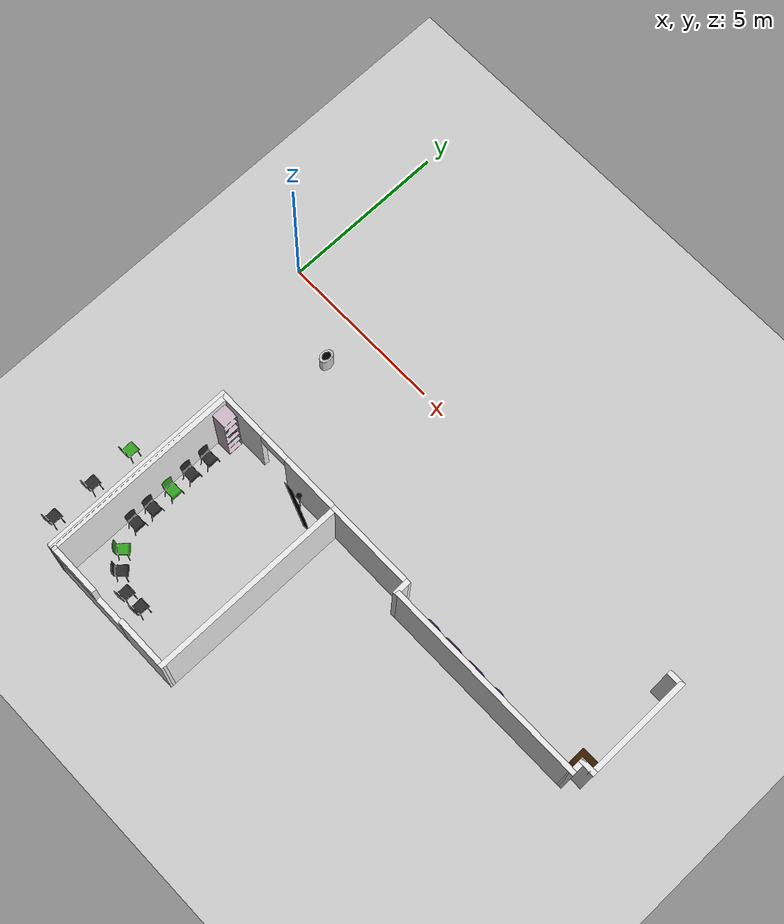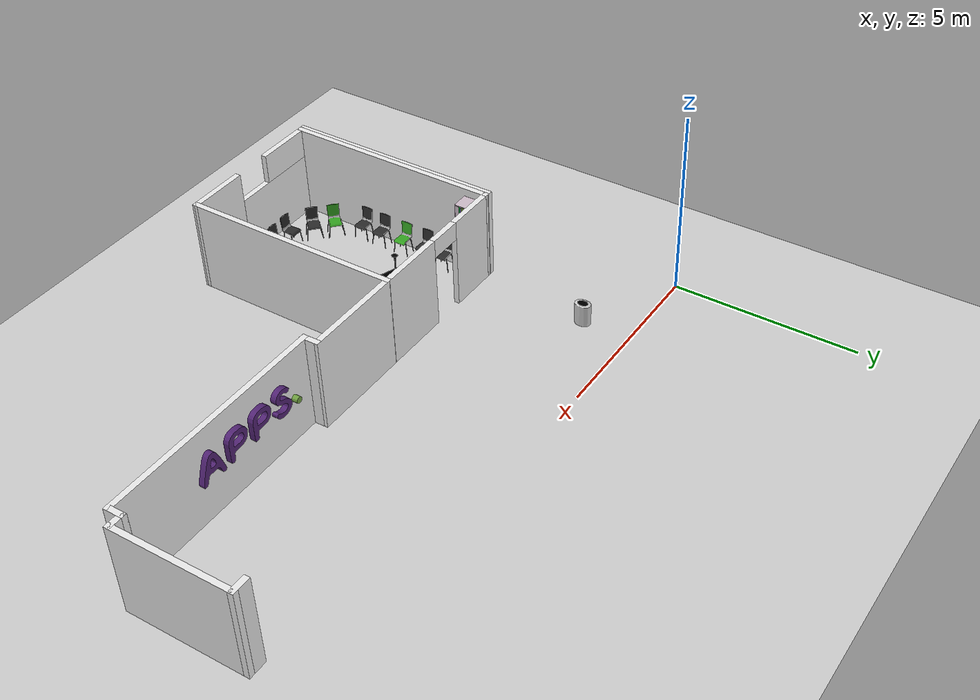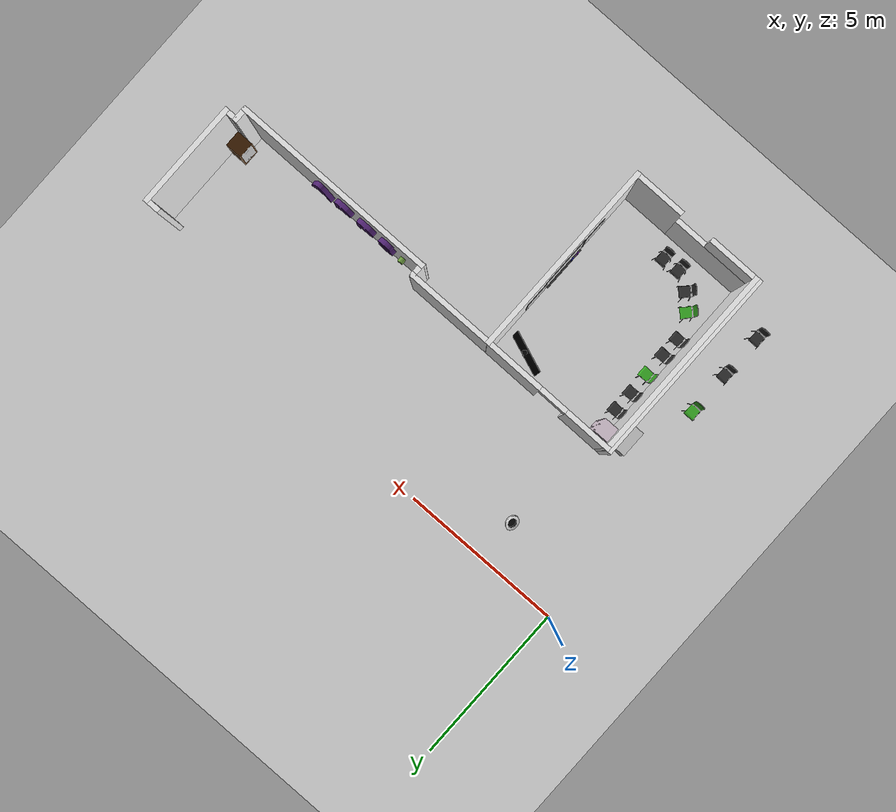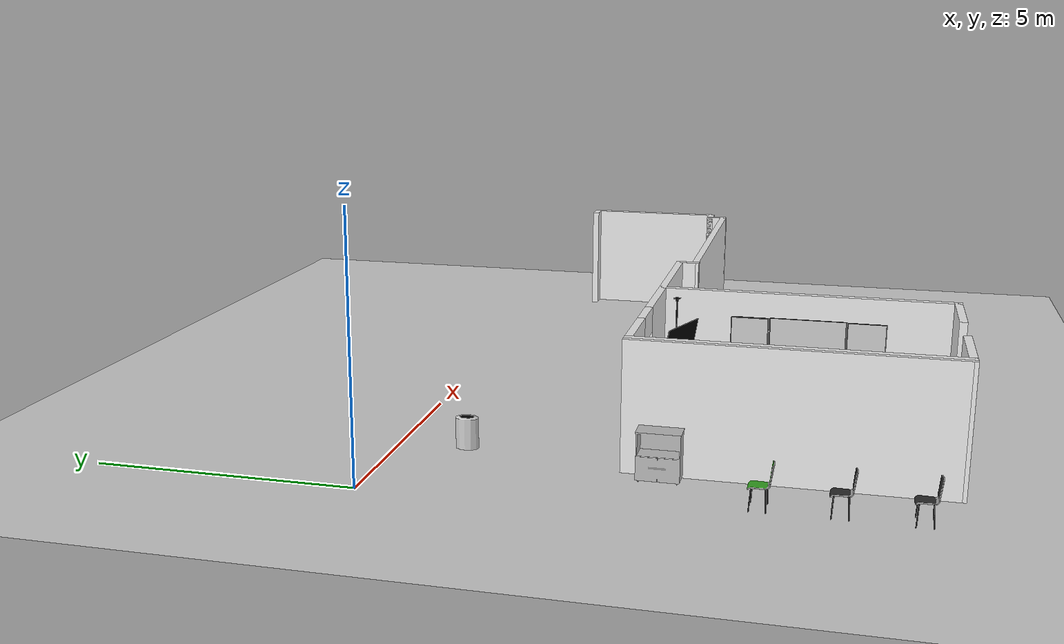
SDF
<sdf version="1.6">
 <world name="default">
  <model name="ground_plane">
   <static>1</static>
   <link name="link">
    <collision name="collision">
     <geometry><plane><normal>0 0 1</normal><size>100 100</size></plane></geometry>
     <surface><friction><ode><mu>100</mu><mu2>50</mu2></ode></friction></surface>
    </collision>
    <visual name="visual">
     <cast_shadows>0</cast_shadows>
     <geometry><plane><normal>0 0 1</normal><size>100 100</size></plane></geometry>
     <material>
      <script><uri>file://media/materials/scripts/gazebo.material</uri><name>Gazebo/Grey</name></script>
     </material>
    </visual>
   </link>
  </model>
  <model name="ucu_basic_frame.world">
   <link name="Wall_171">
    <pose>5.44548 -11.0107 0 0 -0 1.5685</pose>
    <visual name="Wall_171_Visual">
     <pose>0 0 1.25 0 -0 0</pose>
     <geometry><box><size>5.97284 0.15 2.5</size></box></geometry>
     <material>
      <script><uri>file://media/materials/scripts/gazebo.material</uri><name>Gazebo/White</name></script>
      <ambient>1 1 1 1</ambient>
      <diffuse>1 1 1 1</diffuse>
      <specular>0 0 0 1</specular>
      <emissive>0 0 0 1</emissive>
     </material>
     <meta><layer>0</layer></meta>
    </visual>
    <collision name="Wall_171_Collision">
     <pose>0 0 1.25 0 -0 0</pose>
     <geometry><box><size>5.97284 0.15 2.5</size></box></geometry>
     <surface>
      <friction>
       <ode><mu>1</mu><mu2>1</mu2><fdir1>0 0 0</fdir1><slip1>0</slip1><slip2>0</slip2></ode>
       <torsional>
        <coefficient>1</coefficient>
        <patch_radius>0</patch_radius>
        <surface_radius>0</surface_radius>
        <use_patch_radius>1</use_patch_radius>
        <ode><slip>0</slip></ode>
       </torsional>
      </friction>
      <bounce><restitution_coefficient>0</restitution_coefficient><threshold>1e+06</threshold></bounce>
      <contact>
       <collide_without_contact>0</collide_without_contact>
       <collide_without_contact_bitmask>1</collide_without_contact_bitmask>
       <collide_bitmask>1</collide_bitmask>
       <ode>
        <soft_cfm>0</soft_cfm>
        <soft_erp>0.2</soft_erp>
        <kp>1e+13</kp>
        <kd>1</kd>
        <max_vel>0.01</max_vel>
        <min_depth>0</min_depth>
       </ode>
       <bullet>
        <split_impulse>1</split_impulse>
        <split_impulse_penetration_threshold>-0.01</split_impulse_penetration_threshold>
        <soft_cfm>0</soft_cfm>
        <soft_erp>0.2</soft_erp>
        <kp>1e+13</kp>
        <kd>1</kd>
       </bullet>
      </contact>
     </surface>
    </collision>
   </link>
   <link name="Wall_172">
    <pose>6.76546 -8.09988 0 0 0 -0.000444</pose>
    <visual name="Wall_172_Visual">
     <pose>0 0 1.25 0 -0 0</pose>
     <geometry><box><size>2.77695 0.15 2.5</size></box></geometry>
     <material>
      <script><uri>file://media/materials/scripts/gazebo.material</uri><name>Gazebo/White</name></script>
      <ambient>1 1 1 1</ambient>
      <diffuse>1 1 1 1</diffuse>
      <specular>0 0 0 1</specular>
      <emissive>0 0 0 1</emissive>
     </material>
     <meta><layer>0</layer></meta>
    </visual>
    <collision name="Wall_172_Collision">
     <pose>0 0 1.25 0 -0 0</pose>
     <geometry><box><size>2.77695 0.15 2.5</size></box></geometry>
     <surface>
      <friction>
       <ode><mu>1</mu><mu2>1</mu2><fdir1>0 0 0</fdir1><slip1>0</slip1><slip2>0</slip2></ode>
       <torsional>
        <coefficient>1</coefficient>
        <patch_radius>0</patch_radius>
        <surface_radius>0</surface_radius>
        <use_patch_radius>1</use_patch_radius>
        <ode><slip>0</slip></ode>
       </torsional>
      </friction>
      <bounce><restitution_coefficient>0</restitution_coefficient><threshold>1e+06</threshold></bounce>
      <contact>
       <collide_without_contact>0</collide_without_contact>
       <collide_without_contact_bitmask>1</collide_without_contact_bitmask>
       <collide_bitmask>1</collide_bitmask>
       <ode>
        <soft_cfm>0</soft_cfm>
        <soft_erp>0.2</soft_erp>
        <kp>1e+13</kp>
        <kd>1</kd>
        <max_vel>0.01</max_vel>
        <min_depth>0</min_depth>
       </ode>
       <bullet>
        <split_impulse>1</split_impulse>
        <split_impulse_penetration_threshold>-0.01</split_impulse_penetration_threshold>
        <soft_cfm>0</soft_cfm>
        <soft_erp>0.2</soft_erp>
        <kp>1e+13</kp>
        <kd>1</kd>
       </bullet>
      </contact>
     </surface>
    </collision>
   </link>
   <link name="Wall_175">
    <pose>8.08184 -8.28385 0 0 0 -1.55318</pose>
    <visual name="Wall_175_Visual">
     <pose>0 0 1.25 0 -0 0</pose>
     <geometry><box><size>0.5 0.15 2.5</size></box></geometry>
     <material>
      <script><uri>file://media/materials/scripts/gazebo.material</uri><name>Gazebo/White</name></script>
      <ambient>1 1 1 1</ambient>
      <diffuse>1 1 1 1</diffuse>
      <specular>0 0 0 1</specular>
      <emissive>0 0 0 1</emissive>
     </material>
     <meta><layer>0</layer></meta>
    </visual>
    <collision name="Wall_175_Collision">
     <pose>0 0 1.25 0 -0 0</pose>
     <geometry><box><size>0.5 0.15 2.5</size></box></geometry>
     <surface>
      <friction>
       <ode><mu>1</mu><mu2>1</mu2><fdir1>0 0 0</fdir1><slip1>0</slip1><slip2>0</slip2></ode>
       <torsional>
        <coefficient>1</coefficient>
        <patch_radius>0</patch_radius>
        <surface_radius>0</surface_radius>
        <use_patch_radius>1</use_patch_radius>
        <ode><slip>0</slip></ode>
       </torsional>
      </friction>
      <bounce><restitution_coefficient>0</restitution_coefficient><threshold>1e+06</threshold></bounce>
      <contact>
       <collide_without_contact>0</collide_without_contact>
       <collide_without_contact_bitmask>1</collide_without_contact_bitmask>
       <collide_bitmask>1</collide_bitmask>
       <ode>
        <soft_cfm>0</soft_cfm>
        <soft_erp>0.2</soft_erp>
        <kp>1e+13</kp>
        <kd>1</kd>
        <max_vel>0.01</max_vel>
        <min_depth>0</min_depth>
       </ode>
       <bullet>
        <split_impulse>1</split_impulse>
        <split_impulse_penetration_threshold>-0.01</split_impulse_penetration_threshold>
        <soft_cfm>0</soft_cfm>
        <soft_erp>0.2</soft_erp>
        <kp>1e+13</kp>
        <kd>1</kd>
       </bullet>
      </contact>
     </surface>
    </collision>
   </link>
   <link name="Wall_181">
    <pose>3.39042 -8.08948 0 0 -0 3.13683</pose>
    <visual name="Wall_181_Visual_0">
     <pose>-1.19379 0 1.25 0 -0 0</pose>
     <geometry><box><size>1.8861 0.15 2.5</size></box></geometry>
     <material>
      <script><uri>file://media/materials/scripts/gazebo.material</uri><name>Gazebo/White</name></script>
      <ambient>1 1 1 1</ambient>
      <diffuse>1 1 1 1</diffuse>
      <specular>0 0 0 1</specular>
      <emissive>0 0 0 1</emissive>
     </material>
     <meta><layer>0</layer></meta>
    </visual>
    <visual name="Wall_181_Visual_1">
     <pose>1.39305 0 1.25 0 -0 0</pose>
     <geometry><box><size>1.48758 0.15 2.5</size></box></geometry>
     <material>
      <script><uri>file://media/materials/scripts/gazebo.material</uri><name>Gazebo/White</name></script>
      <ambient>1 1 1 1</ambient>
      <diffuse>1 1 1 1</diffuse>
      <specular>0 0 0 1</specular>
      <emissive>0 0 0 1</emissive>
     </material>
     <meta><layer>0</layer></meta>
    </visual>
    <visual name="Wall_181_Visual_2">
     <pose>0.19926 0 2.25 0 -0 0</pose>
     <geometry><box><size>0.9 0.15 0.5</size></box></geometry>
     <material>
      <script><uri>file://media/materials/scripts/gazebo.material</uri><name>Gazebo/White</name></script>
      <ambient>1 1 1 1</ambient>
      <diffuse>1 1 1 1</diffuse>
      <specular>0 0 0 1</specular>
      <emissive>0 0 0 1</emissive>
     </material>
     <meta><layer>0</layer></meta>
    </visual>
    <collision name="Wall_181_Collision_0">
     <pose>-1.19379 0 1.25 0 -0 0</pose>
     <geometry><box><size>1.8861 0.15 2.5</size></box></geometry>
     <surface>
      <friction>
       <ode><mu>1</mu><mu2>1</mu2><fdir1>0 0 0</fdir1><slip1>0</slip1><slip2>0</slip2></ode>
       <torsional>
        <coefficient>1</coefficient>
        <patch_radius>0</patch_radius>
        <surface_radius>0</surface_radius>
        <use_patch_radius>1</use_patch_radius>
        <ode><slip>0</slip></ode>
       </torsional>
      </friction>
      <bounce><restitution_coefficient>0</restitution_coefficient><threshold>1e+06</threshold></bounce>
      <contact>
       <collide_without_contact>0</collide_without_contact>
       <collide_without_contact_bitmask>1</collide_without_contact_bitmask>
       <collide_bitmask>1</collide_bitmask>
       <ode>
        <soft_cfm>0</soft_cfm>
        <soft_erp>0.2</soft_erp>
        <kp>1e+13</kp>
        <kd>1</kd>
        <max_vel>0.01</max_vel>
        <min_depth>0</min_depth>
       </ode>
       <bullet>
        <split_impulse>1</split_impulse>
        <split_impulse_penetration_threshold>-0.01</split_impulse_penetration_threshold>
        <soft_cfm>0</soft_cfm>
        <soft_erp>0.2</soft_erp>
        <kp>1e+13</kp>
        <kd>1</kd>
       </bullet>
      </contact>
     </surface>
    </collision>
    <collision name="Wall_181_Collision_1">
     <pose>1.39305 0 1.25 0 -0 0</pose>
     <geometry><box><size>1.48758 0.15 2.5</size></box></geometry>
     <surface>
      <friction>
       <ode><mu>1</mu><mu2>1</mu2><fdir1>0 0 0</fdir1><slip1>0</slip1><slip2>0</slip2></ode>
       <torsional>
        <coefficient>1</coefficient>
        <patch_radius>0</patch_radius>
        <surface_radius>0</surface_radius>
        <use_patch_radius>1</use_patch_radius>
        <ode><slip>0</slip></ode>
       </torsional>
      </friction>
      <bounce><restitution_coefficient>0</restitution_coefficient><threshold>1e+06</threshold></bounce>
      <contact>
       <collide_without_contact>0</collide_without_contact>
       <collide_without_contact_bitmask>1</collide_without_contact_bitmask>
       <collide_bitmask>1</collide_bitmask>
       <ode>
        <soft_cfm>0</soft_cfm>
        <soft_erp>0.2</soft_erp>
        <kp>1e+13</kp>
        <kd>1</kd>
        <max_vel>0.01</max_vel>
        <min_depth>0</min_depth>
       </ode>
       <bullet>
        <split_impulse>1</split_impulse>
        <split_impulse_penetration_threshold>-0.01</split_impulse_penetration_threshold>
        <soft_cfm>0</soft_cfm>
        <soft_erp>0.2</soft_erp>
        <kp>1e+13</kp>
        <kd>1</kd>
       </bullet>
      </contact>
     </surface>
    </collision>
    <collision name="Wall_181_Collision_2">
     <pose>0.19926 0 2.25 0 -0 0</pose>
     <geometry><box><size>0.9 0.15 0.5</size></box></geometry>
     <surface>
      <friction>
       <ode><mu>1</mu><mu2>1</mu2><fdir1>0 0 0</fdir1><slip1>0</slip1><slip2>0</slip2></ode>
       <torsional>
        <coefficient>1</coefficient>
        <patch_radius>0</patch_radius>
        <surface_radius>0</surface_radius>
        <use_patch_radius>1</use_patch_radius>
        <ode><slip>0</slip></ode>
       </torsional>
      </friction>
      <bounce><restitution_coefficient>0</restitution_coefficient><threshold>1e+06</threshold></bounce>
      <contact>
       <collide_without_contact>0</collide_without_contact>
       <collide_without_contact_bitmask>1</collide_without_contact_bitmask>
       <collide_bitmask>1</collide_bitmask>
       <ode>
        <soft_cfm>0</soft_cfm>
        <soft_erp>0.2</soft_erp>
        <kp>1e+13</kp>
        <kd>1</kd>
        <max_vel>0.01</max_vel>
        <min_depth>0</min_depth>
       </ode>
       <bullet>
        <split_impulse>1</split_impulse>
        <split_impulse_penetration_threshold>-0.01</split_impulse_penetration_threshold>
        <soft_cfm>0</soft_cfm>
        <soft_erp>0.2</soft_erp>
        <kp>1e+13</kp>
        <kd>1</kd>
       </bullet>
      </contact>
     </surface>
    </collision>
   </link>
   <link name="Wall_184">
    <pose>1.33252 -10.9956 0 0 0 -1.56948</pose>
    <visual name="Wall_184_Visual">
     <pose>0 0 1.25 0 -0 0</pose>
     <geometry><box><size>5.98199 0.15 2.5</size></box></geometry>
     <material>
      <script><uri>file://media/materials/scripts/gazebo.material</uri><name>Gazebo/White</name></script>
      <ambient>1 1 1 1</ambient>
      <diffuse>1 1 1 1</diffuse>
      <specular>0 0 0 1</specular>
      <emissive>0 0 0 1</emissive>
     </material>
     <meta><layer>0</layer></meta>
    </visual>
    <collision name="Wall_184_Collision">
     <pose>0 0 1.25 0 -0 0</pose>
     <geometry><box><size>5.98199 0.15 2.5</size></box></geometry>
     <surface>
      <friction>
       <ode><mu>1</mu><mu2>1</mu2><fdir1>0 0 0</fdir1><slip1>0</slip1><slip2>0</slip2></ode>
       <torsional>
        <coefficient>1</coefficient>
        <patch_radius>0</patch_radius>
        <surface_radius>0</surface_radius>
        <use_patch_radius>1</use_patch_radius>
        <ode><slip>0</slip></ode>
       </torsional>
      </friction>
      <bounce><restitution_coefficient>0</restitution_coefficient><threshold>1e+06</threshold></bounce>
      <contact>
       <collide_without_contact>0</collide_without_contact>
       <collide_without_contact_bitmask>1</collide_without_contact_bitmask>
       <collide_bitmask>1</collide_bitmask>
       <ode>
        <soft_cfm>0</soft_cfm>
        <soft_erp>0.2</soft_erp>
        <kp>1e+13</kp>
        <kd>1</kd>
        <max_vel>0.01</max_vel>
        <min_depth>0</min_depth>
       </ode>
       <bullet>
        <split_impulse>1</split_impulse>
        <split_impulse_penetration_threshold>-0.01</split_impulse_penetration_threshold>
        <soft_cfm>0</soft_cfm>
        <soft_erp>0.2</soft_erp>
        <kp>1e+13</kp>
        <kd>1</kd>
       </bullet>
      </contact>
     </surface>
    </collision>
   </link>
   <link name="Wall_185">
    <pose>1.28661 -13.9114 0 0 -0 3.13667</pose>
    <visual name="Wall_185_Visual">
     <pose>0 0 1.25 0 -0 0</pose>
     <geometry><box><size>0.249504 0.15 2.5</size></box></geometry>
     <material>
      <script><uri>file://media/materials/scripts/gazebo.material</uri><name>Gazebo/White</name></script>
      <ambient>1 1 1 1</ambient>
      <diffuse>1 1 1 1</diffuse>
      <specular>0 0 0 1</specular>
      <emissive>0 0 0 1</emissive>
     </material>
     <meta><layer>0</layer></meta>
    </visual>
    <collision name="Wall_185_Collision">
     <pose>0 0 1.25 0 -0 0</pose>
     <geometry><box><size>0.249504 0.15 2.5</size></box></geometry>
     <surface>
      <friction>
       <ode><mu>1</mu><mu2>1</mu2><fdir1>0 0 0</fdir1><slip1>0</slip1><slip2>0</slip2></ode>
       <torsional>
        <coefficient>1</coefficient>
        <patch_radius>0</patch_radius>
        <surface_radius>0</surface_radius>
        <use_patch_radius>1</use_patch_radius>
        <ode><slip>0</slip></ode>
       </torsional>
      </friction>
      <bounce><restitution_coefficient>0</restitution_coefficient><threshold>1e+06</threshold></bounce>
      <contact>
       <collide_without_contact>0</collide_without_contact>
       <collide_without_contact_bitmask>1</collide_without_contact_bitmask>
       <collide_bitmask>1</collide_bitmask>
       <ode>
        <soft_cfm>0</soft_cfm>
        <soft_erp>0.2</soft_erp>
        <kp>1e+13</kp>
        <kd>1</kd>
        <max_vel>0.01</max_vel>
        <min_depth>0</min_depth>
       </ode>
       <bullet>
        <split_impulse>1</split_impulse>
        <split_impulse_penetration_threshold>-0.01</split_impulse_penetration_threshold>
        <soft_cfm>0</soft_cfm>
        <soft_erp>0.2</soft_erp>
        <kp>1e+13</kp>
        <kd>1</kd>
       </bullet>
      </contact>
     </surface>
    </collision>
   </link>
   <link name="Wall_186">
    <pose>1.23028 -10.9951 0 0 -0 1.57305</pose>
    <visual name="Wall_186_Visual">
     <pose>0 0 1.25 0 -0 0</pose>
     <geometry><box><size>5.98236 0.15 2.5</size></box></geometry>
     <material>
      <script><uri>file://media/materials/scripts/gazebo.material</uri><name>Gazebo/White</name></script>
      <ambient>0 1 0 1</ambient>
      <diffuse>1 1 1 1</diffuse>
      <specular>0 0 0 1</specular>
      <emissive>0 0 0 1</emissive>
     </material>
     <meta><layer>0</layer></meta>
    </visual>
    <collision name="Wall_186_Collision">
     <pose>0 0 1.25 0 -0 0</pose>
     <geometry><box><size>5.98236 0.15 2.5</size></box></geometry>
     <surface>
      <friction>
       <ode><mu>1</mu><mu2>1</mu2><fdir1>0 0 0</fdir1><slip1>0</slip1><slip2>0</slip2></ode>
       <torsional>
        <coefficient>1</coefficient>
        <patch_radius>0</patch_radius>
        <surface_radius>0</surface_radius>
        <use_patch_radius>1</use_patch_radius>
        <ode><slip>0</slip></ode>
       </torsional>
      </friction>
      <bounce><restitution_coefficient>0</restitution_coefficient><threshold>1e+06</threshold></bounce>
      <contact>
       <collide_without_contact>0</collide_without_contact>
       <collide_without_contact_bitmask>1</collide_without_contact_bitmask>
       <collide_bitmask>1</collide_bitmask>
       <ode>
        <soft_cfm>0</soft_cfm>
        <soft_erp>0.2</soft_erp>
        <kp>1e+13</kp>
        <kd>1</kd>
        <max_vel>0.01</max_vel>
        <min_depth>0</min_depth>
       </ode>
       <bullet>
        <split_impulse>1</split_impulse>
        <split_impulse_penetration_threshold>-0.01</split_impulse_penetration_threshold>
        <soft_cfm>0</soft_cfm>
        <soft_erp>0.2</soft_erp>
        <kp>1e+13</kp>
        <kd>1</kd>
       </bullet>
      </contact>
     </surface>
    </collision>
   </link>
   <link name="Wall_191">
    <pose>3.38758 -13.9169 0 0 -0 3.13903</pose>
    <visual name="Wall_191_Visual_0">
     <pose>-1.31182 0 1.25 0 -0 0</pose>
     <geometry><box><size>1.62881 0.15 2.5</size></box></geometry>
     <material>
      <script><uri>file://media/materials/scripts/gazebo.material</uri><name>Gazebo/White</name></script>
      <ambient>1 1 1 1</ambient>
      <diffuse>1 1 1 1</diffuse>
      <specular>0 0 0 1</specular>
      <emissive>0 0 0 1</emissive>
     </material>
     <meta><layer>0</layer></meta>
    </visual>
    <visual name="Wall_191_Visual_1">
     <pose>0.814404 0 0.85 0 -0 0</pose>
     <geometry><box><size>2.62364 0.15 1.7</size></box></geometry>
     <material>
      <script><uri>file://media/materials/scripts/gazebo.material</uri><name>Gazebo/White</name></script>
      <ambient>1 1 1 1</ambient>
      <diffuse>1 1 1 1</diffuse>
      <specular>0 0 0 1</specular>
      <emissive>0 0 0 1</emissive>
     </material>
     <meta><layer>0</layer></meta>
    </visual>
    <visual name="Wall_191_Visual_2">
     <pose>1.3144 0 2.1 0 -0 0</pose>
     <geometry><box><size>1.62365 0.15 0.8</size></box></geometry>
     <material>
      <script><uri>file://media/materials/scripts/gazebo.material</uri><name>Gazebo/White</name></script>
      <ambient>1 1 1 1</ambient>
      <diffuse>1 1 1 1</diffuse>
      <specular>0 0 0 1</specular>
      <emissive>0 0 0 1</emissive>
     </material>
     <meta><layer>0</layer></meta>
    </visual>
    <collision name="Wall_191_Collision_1">
     <pose>0.814404 0 0.85 0 -0 0</pose>
     <geometry><box><size>2.62364 0.15 1.7</size></box></geometry>
     <surface>
      <friction>
       <ode><mu>1</mu><mu2>1</mu2><fdir1>0 0 0</fdir1><slip1>0</slip1><slip2>0</slip2></ode>
       <torsional>
        <coefficient>1</coefficient>
        <patch_radius>0</patch_radius>
        <surface_radius>0</surface_radius>
        <use_patch_radius>1</use_patch_radius>
        <ode><slip>0</slip></ode>
       </torsional>
      </friction>
      <bounce><restitution_coefficient>0</restitution_coefficient><threshold>1e+06</threshold></bounce>
      <contact>
       <collide_without_contact>0</collide_without_contact>
       <collide_without_contact_bitmask>1</collide_without_contact_bitmask>
       <collide_bitmask>1</collide_bitmask>
       <ode>
        <soft_cfm>0</soft_cfm>
        <soft_erp>0.2</soft_erp>
        <kp>1e+13</kp>
        <kd>1</kd>
        <max_vel>0.01</max_vel>
        <min_depth>0</min_depth>
       </ode>
       <bullet>
        <split_impulse>1</split_impulse>
        <split_impulse_penetration_threshold>-0.01</split_impulse_penetration_threshold>
        <soft_cfm>0</soft_cfm>
        <soft_erp>0.2</soft_erp>
        <kp>1e+13</kp>
        <kd>1</kd>
       </bullet>
      </contact>
     </surface>
    </collision>
    <collision name="Wall_191_Collision_0">
     <pose>-1.31182 0 1.25 0 -0 0</pose>
     <geometry><box><size>1.62881 0.15 2.5</size></box></geometry>
     <surface>
      <friction>
       <ode><mu>1</mu><mu2>1</mu2><fdir1>0 0 0</fdir1><slip1>0</slip1><slip2>0</slip2></ode>
       <torsional>
        <coefficient>1</coefficient>
        <patch_radius>0</patch_radius>
        <surface_radius>0</surface_radius>
        <use_patch_radius>1</use_patch_radius>
        <ode><slip>0</slip></ode>
       </torsional>
      </friction>
      <bounce><restitution_coefficient>0</restitution_coefficient><threshold>1e+06</threshold></bounce>
      <contact>
       <collide_without_contact>0</collide_without_contact>
       <collide_without_contact_bitmask>1</collide_without_contact_bitmask>
       <collide_bitmask>1</collide_bitmask>
       <ode>
        <soft_cfm>0</soft_cfm>
        <soft_erp>0.2</soft_erp>
        <kp>1e+13</kp>
        <kd>1</kd>
        <max_vel>0.01</max_vel>
        <min_depth>0</min_depth>
       </ode>
       <bullet>
        <split_impulse>1</split_impulse>
        <split_impulse_penetration_threshold>-0.01</split_impulse_penetration_threshold>
        <soft_cfm>0</soft_cfm>
        <soft_erp>0.2</soft_erp>
        <kp>1e+13</kp>
        <kd>1</kd>
       </bullet>
      </contact>
     </surface>
    </collision>
    <collision name="Wall_191_Collision_2">
     <pose>1.3144 0 2.1 0 -0 0</pose>
     <geometry><box><size>1.62365 0.15 0.8</size></box></geometry>
     <surface>
      <friction>
       <ode><mu>1</mu><mu2>1</mu2><fdir1>0 0 0</fdir1><slip1>0</slip1><slip2>0</slip2></ode>
       <torsional>
        <coefficient>1</coefficient>
        <patch_radius>0</patch_radius>
        <surface_radius>0</surface_radius>
        <use_patch_radius>1</use_patch_radius>
        <ode><slip>0</slip></ode>
       </torsional>
      </friction>
      <bounce><restitution_coefficient>0</restitution_coefficient><threshold>1e+06</threshold></bounce>
      <contact>
       <collide_without_contact>0</collide_without_contact>
       <collide_without_contact_bitmask>1</collide_without_contact_bitmask>
       <collide_bitmask>1</collide_bitmask>
       <ode>
        <soft_cfm>0</soft_cfm>
        <soft_erp>0.2</soft_erp>
        <kp>1e+13</kp>
        <kd>1</kd>
        <max_vel>0.01</max_vel>
        <min_depth>0</min_depth>
       </ode>
       <bullet>
        <split_impulse>1</split_impulse>
        <split_impulse_penetration_threshold>-0.01</split_impulse_penetration_threshold>
        <soft_cfm>0</soft_cfm>
        <soft_erp>0.2</soft_erp>
        <kp>1e+13</kp>
        <kd>1</kd>
       </bullet>
      </contact>
     </surface>
    </collision>
   </link>
   <link name="Wall_276">
    <pose>11.1349 -8.45041 0 0 -0 0</pose>
    <visual name="Wall_276_Visual">
     <pose>0 0 1.25 0 -0 0</pose>
     <geometry><box><size>6.25 0.15 2.5</size></box></geometry>
     <material>
      <script><uri>file://media/materials/scripts/gazebo.material</uri><name>Gazebo/White</name></script>
      <ambient>1 1 1 1</ambient>
      <diffuse>1 1 1 1</diffuse>
      <specular>0 0 0 1</specular>
      <emissive>0 0 0 1</emissive>
     </material>
     <meta><layer>0</layer></meta>
    </visual>
    <collision name="Wall_276_Collision">
     <pose>0 0 1.25 0 -0 0</pose>
     <geometry><box><size>6.25 0.15 2.5</size></box></geometry>
     <surface>
      <friction>
       <ode><mu>1</mu><mu2>1</mu2><fdir1>0 0 0</fdir1><slip1>0</slip1><slip2>0</slip2></ode>
       <torsional>
        <coefficient>1</coefficient>
        <patch_radius>0</patch_radius>
        <surface_radius>0</surface_radius>
        <use_patch_radius>1</use_patch_radius>
        <ode><slip>0</slip></ode>
       </torsional>
      </friction>
      <bounce><restitution_coefficient>0</restitution_coefficient><threshold>1e+06</threshold></bounce>
      <contact>
       <collide_without_contact>0</collide_without_contact>
       <collide_without_contact_bitmask>1</collide_without_contact_bitmask>
       <collide_bitmask>1</collide_bitmask>
       <ode>
        <soft_cfm>0</soft_cfm>
        <soft_erp>0.2</soft_erp>
        <kp>1e+13</kp>
        <kd>1</kd>
        <max_vel>0.01</max_vel>
        <min_depth>0</min_depth>
       </ode>
       <bullet>
        <split_impulse>1</split_impulse>
        <split_impulse_penetration_threshold>-0.01</split_impulse_penetration_threshold>
        <soft_cfm>0</soft_cfm>
        <soft_erp>0.2</soft_erp>
        <kp>1e+13</kp>
        <kd>1</kd>
       </bullet>
      </contact>
     </surface>
    </collision>
   </link>
   <link name="Wall_293">
    <pose>14.1849 -8.27541 0 0 -0 1.5708</pose>
    <visual name="Wall_293_Visual">
     <pose>0 0 1.25 0 -0 0</pose>
     <geometry><box><size>0.5 0.15 2.5</size></box></geometry>
     <material>
      <script><uri>file://media/materials/scripts/gazebo.material</uri><name>Gazebo/White</name></script>
      <ambient>1 1 1 1</ambient>
      <diffuse>1 1 1 1</diffuse>
      <specular>0 0 0 1</specular>
      <emissive>0 0 0 1</emissive>
     </material>
     <meta><layer>0</layer></meta>
    </visual>
    <collision name="Wall_293_Collision">
     <pose>0 0 1.25 0 -0 0</pose>
     <geometry><box><size>0.5 0.15 2.5</size></box></geometry>
     <surface>
      <friction>
       <ode><mu>1</mu><mu2>1</mu2><fdir1>0 0 0</fdir1><slip1>0</slip1><slip2>0</slip2></ode>
       <torsional>
        <coefficient>1</coefficient>
        <patch_radius>0</patch_radius>
        <surface_radius>0</surface_radius>
        <use_patch_radius>1</use_patch_radius>
        <ode><slip>0</slip></ode>
       </torsional>
      </friction>
      <bounce><restitution_coefficient>0</restitution_coefficient><threshold>1e+06</threshold></bounce>
      <contact>
       <collide_without_contact>0</collide_without_contact>
       <collide_without_contact_bitmask>1</collide_without_contact_bitmask>
       <collide_bitmask>1</collide_bitmask>
       <ode>
        <soft_cfm>0</soft_cfm>
        <soft_erp>0.2</soft_erp>
        <kp>1e+13</kp>
        <kd>1</kd>
        <max_vel>0.01</max_vel>
        <min_depth>0</min_depth>
       </ode>
       <bullet>
        <split_impulse>1</split_impulse>
        <split_impulse_penetration_threshold>-0.01</split_impulse_penetration_threshold>
        <soft_cfm>0</soft_cfm>
        <soft_erp>0.2</soft_erp>
        <kp>1e+13</kp>
        <kd>1</kd>
       </bullet>
      </contact>
     </surface>
    </collision>
   </link>
   <link name="Wall_294">
    <pose>14.3599 -8.10041 0 0 -0 0</pose>
    <visual name="Wall_294_Visual">
     <pose>0 0 1.25 0 -0 0</pose>
     <geometry><box><size>0.5 0.15 2.5</size></box></geometry>
     <material>
      <script><uri>file://media/materials/scripts/gazebo.material</uri><name>Gazebo/White</name></script>
      <ambient>1 1 1 1</ambient>
      <diffuse>1 1 1 1</diffuse>
      <specular>0 0 0 1</specular>
      <emissive>0 0 0 1</emissive>
     </material>
     <meta><layer>0</layer></meta>
    </visual>
    <collision name="Wall_294_Collision">
     <pose>0 0 1.25 0 -0 0</pose>
     <geometry><box><size>0.5 0.15 2.5</size></box></geometry>
     <surface>
      <friction>
       <ode><mu>1</mu><mu2>1</mu2><fdir1>0 0 0</fdir1><slip1>0</slip1><slip2>0</slip2></ode>
       <torsional>
        <coefficient>1</coefficient>
        <patch_radius>0</patch_radius>
        <surface_radius>0</surface_radius>
        <use_patch_radius>1</use_patch_radius>
        <ode><slip>0</slip></ode>
       </torsional>
      </friction>
      <bounce><restitution_coefficient>0</restitution_coefficient><threshold>1e+06</threshold></bounce>
      <contact>
       <collide_without_contact>0</collide_without_contact>
       <collide_without_contact_bitmask>1</collide_without_contact_bitmask>
       <collide_bitmask>1</collide_bitmask>
       <ode>
        <soft_cfm>0</soft_cfm>
        <soft_erp>0.2</soft_erp>
        <kp>1e+13</kp>
        <kd>1</kd>
        <max_vel>0.01</max_vel>
        <min_depth>0</min_depth>
       </ode>
       <bullet>
        <split_impulse>1</split_impulse>
        <split_impulse_penetration_threshold>-0.01</split_impulse_penetration_threshold>
        <soft_cfm>0</soft_cfm>
        <soft_erp>0.2</soft_erp>
        <kp>1e+13</kp>
        <kd>1</kd>
       </bullet>
      </contact>
     </surface>
    </collision>
   </link>
   <link name="Wall_296">
    <pose>14.5349 -6.55041 0 0 -0 1.5708</pose>
    <visual name="Wall_296_Visual">
     <pose>0 0 1.25 0 -0 0</pose>
     <geometry><box><size>3.25 0.15 2.5</size></box></geometry>
     <material>
      <script><uri>file://media/materials/scripts/gazebo.material</uri><name>Gazebo/White</name></script>
      <ambient>1 1 1 1</ambient>
      <diffuse>1 1 1 1</diffuse>
      <specular>0 0 0 1</specular>
      <emissive>0 0 0 1</emissive>
     </material>
     <meta><layer>0</layer></meta>
    </visual>
    <collision name="Wall_296_Collision">
     <pose>0 0 1.25 0 -0 0</pose>
     <geometry><box><size>3.25 0.15 2.5</size></box></geometry>
     <surface>
      <friction>
       <ode><mu>1</mu><mu2>1</mu2><fdir1>0 0 0</fdir1><slip1>0</slip1><slip2>0</slip2></ode>
       <torsional>
        <coefficient>1</coefficient>
        <patch_radius>0</patch_radius>
        <surface_radius>0</surface_radius>
        <use_patch_radius>1</use_patch_radius>
        <ode><slip>0</slip></ode>
       </torsional>
      </friction>
      <bounce><restitution_coefficient>0</restitution_coefficient><threshold>1e+06</threshold></bounce>
      <contact>
       <collide_without_contact>0</collide_without_contact>
       <collide_without_contact_bitmask>1</collide_without_contact_bitmask>
       <collide_bitmask>1</collide_bitmask>
       <ode>
        <soft_cfm>0</soft_cfm>
        <soft_erp>0.2</soft_erp>
        <kp>1e+13</kp>
        <kd>1</kd>
        <max_vel>0.01</max_vel>
        <min_depth>0</min_depth>
       </ode>
       <bullet>
        <split_impulse>1</split_impulse>
        <split_impulse_penetration_threshold>-0.01</split_impulse_penetration_threshold>
        <soft_cfm>0</soft_cfm>
        <soft_erp>0.2</soft_erp>
        <kp>1e+13</kp>
        <kd>1</kd>
       </bullet>
      </contact>
     </surface>
    </collision>
   </link>
   <link name="Wall_297">
    <pose>14.3599 -5.00041 0 0 -0 3.14159</pose>
    <visual name="Wall_297_Visual">
     <pose>0 0 1.25 0 -0 0</pose>
     <geometry><box><size>0.5 0.15 2.5</size></box></geometry>
     <material>
      <script><uri>file://media/materials/scripts/gazebo.material</uri><name>Gazebo/White</name></script>
      <ambient>1 1 1 1</ambient>
      <diffuse>1 1 1 1</diffuse>
      <specular>0 0 0 1</specular>
      <emissive>0 0 0 1</emissive>
     </material>
     <meta><layer>0</layer></meta>
    </visual>
    <collision name="Wall_297_Collision">
     <pose>0 0 1.25 0 -0 0</pose>
     <geometry><box><size>0.5 0.15 2.5</size></box></geometry>
     <surface>
      <friction>
       <ode><mu>1</mu><mu2>1</mu2><fdir1>0 0 0</fdir1><slip1>0</slip1><slip2>0</slip2></ode>
       <torsional>
        <coefficient>1</coefficient>
        <patch_radius>0</patch_radius>
        <surface_radius>0</surface_radius>
        <use_patch_radius>1</use_patch_radius>
        <ode><slip>0</slip></ode>
       </torsional>
      </friction>
      <bounce><restitution_coefficient>0</restitution_coefficient><threshold>1e+06</threshold></bounce>
      <contact>
       <collide_without_contact>0</collide_without_contact>
       <collide_without_contact_bitmask>1</collide_without_contact_bitmask>
       <collide_bitmask>1</collide_bitmask>
       <ode>
        <soft_cfm>0</soft_cfm>
        <soft_erp>0.2</soft_erp>
        <kp>1e+13</kp>
        <kd>1</kd>
        <max_vel>0.01</max_vel>
        <min_depth>0</min_depth>
       </ode>
       <bullet>
        <split_impulse>1</split_impulse>
        <split_impulse_penetration_threshold>-0.01</split_impulse_penetration_threshold>
        <soft_cfm>0</soft_cfm>
        <soft_erp>0.2</soft_erp>
        <kp>1e+13</kp>
        <kd>1</kd>
       </bullet>
      </contact>
     </surface>
    </collision>
   </link>
   <static>1</static>
   <pose>0.7577 3.6363 0 0 -0 0</pose>
  </model>
  <model name="APPS">
   <pose>11.01 -4.67 1.49 0 -0 1.57</pose>
   <static>1</static>
   <link name="model_body">
    <visual name="visual">
     <geometry>
      <mesh><uri>model://robert_gazebo/meshes/APPS_letters_visual.dae</uri><scale>1.5 1.5 1.5</scale></mesh>
     </geometry>
    </visual>
    <collision name="collision">
     <geometry>
      <mesh><uri>model://robert_gazebo/meshes/APPS_letters_collision.dae</uri><scale>1.5 1.5 1.5</scale></mesh>
     </geometry>
    </collision>
    <inertial>
     <inertia><ixx>4.44</ixx><ixy>0</ixy><ixz>0</ixz><iyy>0.47</iyy><iyz>0</iyz><izz>4.05</izz></inertia>
     <mass>10</mass>
    </inertial>
   </link>
  </model>
  <model name="locker_008">
   <pose>1.70066 -5.11059 0.450774 0 0 -1.56865</pose>
   <static>0</static>
   <link name="model_body">
    <visual name="visual">
     <geometry>
      <mesh><uri>model://robert_gazebo/meshes/locker_008_visual.dae</uri><scale>1 1 1</scale></mesh>
     </geometry>
    </visual>
    <collision name="collision">
     <geometry>
      <mesh><uri>model://robert_gazebo/meshes/locker_008_collision.dae</uri><scale>1 1 1</scale></mesh>
     </geometry>
    </collision>
    <inertial>
     <inertia><ixx>0.69</ixx><ixy>0</ixy><ixz>0</ixz><iyy>1.19</iyy><iyz>0</iyz><izz>0.78</izz></inertia>
     <mass>10</mass>
    </inertial>
   </link>
  </model>
  <model name="dump_1">
   <pose>2.51946 -1.32025 0.295191 0.001834 0.000835 -1.57</pose>
   <static>0</static>
   <link name="model_body">
    <visual name="visual">
     <geometry><mesh><uri>model://robert_gazebo/meshes/dump_visual.dae</uri><scale>1 1 1</scale></mesh></geometry>
    </visual>
    <collision name="collision">
     <geometry>
      <mesh><uri>model://robert_gazebo/meshes/dump_collision.dae</uri><scale>1 1 1</scale></mesh>
     </geometry>
    </collision>
    <inertial>
     <inertia><ixx>0.12</ixx><ixy>0</ixy><ixz>0</ixz><iyy>0.14</iyy><iyz>0</iyz><izz>0.06</izz></inertia>
     <mass>3</mass>
    </inertial>
   </link>
  </model>
  <model name="screen_007">
   <pose>5.31 -4.95 1.6 0 -0 2.79</pose>
   <static>1</static>
   <link name="model_body">
    <visual name="visual">
     <geometry>
      <mesh><uri>model://robert_gazebo/meshes/screen_visual.dae</uri><scale>1 1 1</scale></mesh>
     </geometry>
    </visual>
    <collision name="collision">
     <geometry>
      <mesh><uri>model://robert_gazebo/meshes/screen_collision.dae</uri><scale>1 1 1</scale></mesh>
     </geometry>
    </collision>
    <inertial>
     <inertia><ixx>0.35</ixx><ixy>0</ixy><ixz>0</ixz><iyy>1.3</iyy><iyz>0</iyz><izz>0.98</izz></inertia>
     <mass>8</mass>
    </inertial>
   </link>
  </model>
  <model name="classroom_chair_008_1_1_1">
   <pose>0.809929 -6.93998 0.445362 9e-06 0.000135 3.13988</pose>
   <static>0</static>
   <link name="model_body">
    <visual name="visual">
     <geometry>
      <mesh>
       <uri>model://robert_gazebo/meshes/classroom_chair_green_visual.dae</uri>
       <scale>100 100 100</scale>
      </mesh>
     </geometry>
    </visual>
    <collision name="collision">
     <geometry>
      <mesh><uri>model://robert_gazebo/meshes/classroom_chair_collision.dae</uri><scale>1 1 1</scale></mesh>
     </geometry>
    </collision>
    <inertial>
     <inertia><ixx>0.34</ixx><ixy>0</ixy><ixz>0</ixz><iyy>0.34</iyy><iyz>0</iyz><izz>0.18</izz></inertia>
     <mass>5</mass>
    </inertial>
   </link>
  </model>
  <model name="classroom_chair_008_2_1_1">
   <pose>0.809921 -8.28997 0.44536 6e-06 0.000124 3.13982</pose>
   <static>0</static>
   <link name="model_body">
    <visual name="visual">
     <geometry>
      <mesh><uri>model://robert_gazebo/meshes/classroom_chair_grey_visual.dae</uri><scale>100 100 100</scale></mesh>
     </geometry>
    </visual>
    <collision name="collision">
     <geometry>
      <mesh><uri>model://robert_gazebo/meshes/classroom_chair_collision.dae</uri><scale>1 1 1</scale></mesh>
     </geometry>
    </collision>
    <inertial>
     <inertia><ixx>0.34</ixx><ixy>0</ixy><ixz>0</ixz><iyy>0.34</iyy><iyz>0</iyz><izz>0.18</izz></inertia>
     <mass>5</mass>
    </inertial>
   </link>
  </model>
  <model name="classroom_chair_008_3_1_1">
   <pose>0.809921 -9.63997 0.44536 6e-06 0.000124 3.13982</pose>
   <static>0</static>
   <link name="model_body">
    <visual name="visual">
     <geometry>
      <mesh><uri>model://robert_gazebo/meshes/classroom_chair_grey_visual.dae</uri><scale>100 100 100</scale></mesh>
     </geometry>
    </visual>
    <collision name="collision">
     <geometry>
      <mesh><uri>model://robert_gazebo/meshes/classroom_chair_collision.dae</uri><scale>1 1 1</scale></mesh>
     </geometry>
    </collision>
    <inertial>
     <inertia><ixx>0.34</ixx><ixy>0</ixy><ixz>0</ixz><iyy>0.34</iyy><iyz>0</iyz><izz>0.18</izz></inertia>
     <mass>5</mass>
    </inertial>
   </link>
  </model>
  <model name="classroom_chair_007_2">
   <pose>4.21922 -9.58491 0.445353 -4e-06 0.00012 3.13977</pose>
   <static>0</static>
   <link name="model_body">
    <visual name="visual">
     <geometry>
      <mesh><uri>model://robert_gazebo/meshes/classroom_chair_grey_visual.dae</uri><scale>100 100 100</scale></mesh>
     </geometry>
    </visual>
    <collision name="collision">
     <geometry>
      <mesh><uri>model://robert_gazebo/meshes/classroom_chair_collision.dae</uri><scale>1 1 1</scale></mesh>
     </geometry>
    </collision>
    <inertial>
     <inertia><ixx>0.34</ixx><ixy>0</ixy><ixz>0</ixz><iyy>0.34</iyy><iyz>0</iyz><izz>0.18</izz></inertia>
     <mass>5</mass>
    </inertial>
   </link>
  </model>
  <model name="classroom_chair_007_3">
   <pose>3.68601 -9.60893 0.445361 2e-06 0.000124 3.13971</pose>
   <static>0</static>
   <link name="model_body">
    <visual name="visual">
     <geometry>
      <mesh><uri>model://robert_gazebo/meshes/classroom_chair_grey_visual.dae</uri><scale>100 100 100</scale></mesh>
     </geometry>
    </visual>
    <collision name="collision">
     <geometry>
      <mesh><uri>model://robert_gazebo/meshes/classroom_chair_collision.dae</uri><scale>1 1 1</scale></mesh>
     </geometry>
    </collision>
    <inertial>
     <inertia><ixx>0.34</ixx><ixy>0</ixy><ixz>0</ixz><iyy>0.34</iyy><iyz>0</iyz><izz>0.18</izz></inertia>
     <mass>5</mass>
    </inertial>
   </link>
  </model>
  <model name="classroom_chair_007_4">
   <pose>3.14474 -9.29354 0.44536 4e-06 0.000131 2.39393</pose>
   <static>0</static>
   <link name="model_body">
    <visual name="visual">
     <geometry>
      <mesh><uri>model://robert_gazebo/meshes/classroom_chair_grey_visual.dae</uri><scale>100 100 100</scale></mesh>
     </geometry>
    </visual>
    <collision name="collision">
     <geometry>
      <mesh><uri>model://robert_gazebo/meshes/classroom_chair_collision.dae</uri><scale>1 1 1</scale></mesh>
     </geometry>
    </collision>
    <inertial>
     <inertia><ixx>0.34</ixx><ixy>0</ixy><ixz>0</ixz><iyy>0.34</iyy><iyz>0</iyz><izz>0.18</izz></inertia>
     <mass>5</mass>
    </inertial>
   </link>
  </model>
  <model name="classroom_chair_007_5">
   <pose>2.73535 -8.883 0.445359 1.2e-05 0.00012 2.39395</pose>
   <static>0</static>
   <link name="model_body">
    <visual name="visual">
     <geometry>
      <mesh>
       <uri>model://robert_gazebo/meshes/classroom_chair_green_visual.dae</uri>
       <scale>100 100 100</scale>
      </mesh>
     </geometry>
    </visual>
    <collision name="collision">
     <geometry>
      <mesh><uri>model://robert_gazebo/meshes/classroom_chair_collision.dae</uri><scale>1 1 1</scale></mesh>
     </geometry>
    </collision>
    <inertial>
     <inertia><ixx>0.34</ixx><ixy>0</ixy><ixz>0</ixz><iyy>0.34</iyy><iyz>0</iyz><izz>0.18</izz></inertia>
     <mass>5</mass>
    </inertial>
   </link>
  </model>
  <model name="classroom_chair_007_6">
   <pose>2.43077 -8.14511 0.445355 6e-06 0.000129 1.57281</pose>
   <static>0</static>
   <link name="model_body">
    <visual name="visual">
     <geometry>
      <mesh><uri>model://robert_gazebo/meshes/classroom_chair_grey_visual.dae</uri><scale>100 100 100</scale></mesh>
     </geometry>
    </visual>
    <collision name="collision">
     <geometry>
      <mesh><uri>model://robert_gazebo/meshes/classroom_chair_collision.dae</uri><scale>1 1 1</scale></mesh>
     </geometry>
    </collision>
    <inertial>
     <inertia><ixx>0.34</ixx><ixy>0</ixy><ixz>0</ixz><iyy>0.34</iyy><iyz>0</iyz><izz>0.18</izz></inertia>
     <mass>5</mass>
    </inertial>
   </link>
  </model>
  <model name="classroom_chair_007_7">
   <pose>2.43601 -7.55686 0.44536 4e-06 0.000131 1.57277</pose>
   <static>0</static>
   <link name="model_body">
    <visual name="visual">
     <geometry>
      <mesh><uri>model://robert_gazebo/meshes/classroom_chair_grey_visual.dae</uri><scale>100 100 100</scale></mesh>
     </geometry>
    </visual>
    <collision name="collision">
     <geometry>
      <mesh><uri>model://robert_gazebo/meshes/classroom_chair_collision.dae</uri><scale>1 1 1</scale></mesh>
     </geometry>
    </collision>
    <inertial>
     <inertia><ixx>0.34</ixx><ixy>0</ixy><ixz>0</ixz><iyy>0.34</iyy><iyz>0</iyz><izz>0.18</izz></inertia>
     <mass>5</mass>
    </inertial>
   </link>
  </model>
  <model name="classroom_chair_007_8">
   <pose>2.43459 -6.85116 0.445361 6e-06 0.000124 1.57276</pose>
   <static>0</static>
   <link name="model_body">
    <visual name="visual">
     <geometry>
      <mesh>
       <uri>model://robert_gazebo/meshes/classroom_chair_green_visual.dae</uri>
       <scale>100 100 100</scale>
      </mesh>
     </geometry>
    </visual>
    <collision name="collision">
     <geometry>
      <mesh><uri>model://robert_gazebo/meshes/classroom_chair_collision.dae</uri><scale>1 1 1</scale></mesh>
     </geometry>
    </collision>
    <inertial>
     <inertia><ixx>0.34</ixx><ixy>0</ixy><ixz>0</ixz><iyy>0.34</iyy><iyz>0</iyz><izz>0.18</izz></inertia>
     <mass>5</mass>
    </inertial>
   </link>
  </model>
  <model name="classroom_chair_007_9">
   <pose>2.41261 -6.18538 0.44536 6e-06 0.000122 1.57274</pose>
   <static>0</static>
   <link name="model_body">
    <visual name="visual">
     <geometry>
      <mesh><uri>model://robert_gazebo/meshes/classroom_chair_grey_visual.dae</uri><scale>100 100 100</scale></mesh>
     </geometry>
    </visual>
    <collision name="collision">
     <geometry>
      <mesh><uri>model://robert_gazebo/meshes/classroom_chair_collision.dae</uri><scale>1 1 1</scale></mesh>
     </geometry>
    </collision>
    <inertial>
     <inertia><ixx>0.34</ixx><ixy>0</ixy><ixz>0</ixz><iyy>0.34</iyy><iyz>0</iyz><izz>0.18</izz></inertia>
     <mass>5</mass>
    </inertial>
   </link>
  </model>
  <model name="classroom_chair_007_10">
   <pose>2.42576 -5.5556 0.445361 6e-06 0.000124 1.57276</pose>
   <static>0</static>
   <link name="model_body">
    <visual name="visual">
     <geometry>
      <mesh><uri>model://robert_gazebo/meshes/classroom_chair_grey_visual.dae</uri><scale>100 100 100</scale></mesh>
     </geometry>
    </visual>
    <collision name="collision">
     <geometry>
      <mesh><uri>model://robert_gazebo/meshes/classroom_chair_collision.dae</uri><scale>1 1 1</scale></mesh>
     </geometry>
    </collision>
    <inertial>
     <inertia><ixx>0.34</ixx><ixy>0</ixy><ixz>0</ixz><iyy>0.34</iyy><iyz>0</iyz><izz>0.18</izz></inertia>
     <mass>5</mass>
    </inertial>
   </link>
  </model>
  <model name="fire_rescue_box">
   <pose>14.9946 -4.14034 0.432619 -1e-06 1e-06 -3.14147</pose>
   <static>0</static>
   <link name="model_body">
    <visual name="visual">
     <geometry>
      <mesh><uri>model://robert_gazebo/meshes/fire_rescue_box_visual.dae</uri><scale>1 1 1</scale></mesh>
     </geometry>
    </visual>
    <collision name="collision">
     <geometry>
      <mesh><uri>model://robert_gazebo/meshes/fire_rescue_box_collision.dae</uri><scale>1 1 1</scale></mesh>
     </geometry>
    </collision>
    <inertial>
     <inertia><ixx>1.8</ixx><ixy>0</ixy><ixz>0</ixz><iyy>1.53</iyy><iyz>0</iyz><izz>0.45</izz></inertia>
     <mass>12</mass>
    </inertial>
   </link>
  </model>
  <model name="bookcase_007">
   <pose>2.42809 -4.80493 1.27299 -7.4e-05 -4.4e-05 -1.56984</pose>
   <static>0</static>
   <link name="model_body">
    <visual name="visual">
     <geometry>
      <mesh><uri>model://robert_gazebo/meshes/bookcase_visual.dae</uri><scale>1 1 1</scale></mesh>
     </geometry>
    </visual>
    <collision name="collision">
     <geometry>
      <mesh><uri>model://robert_gazebo/meshes/bookcase_collision.dae</uri><scale>1 1 1</scale></mesh>
     </geometry>
    </collision>
    <inertial>
     <inertia><ixx>4.16</ixx><ixy>0</ixy><ixz>0</ixz><iyy>4.09</iyy><iyz>0</iyz><izz>0.25</izz></inertia>
     <mass>12</mass>
    </inertial>
   </link>
  </model>
  <model name="board_007">
   <pose>6.1 -7.44 1.46 0 -0 3.14</pose>
   <static>1</static>
   <link name="model_body">
    <visual name="visual">
     <geometry>
      <mesh><uri>model://robert_gazebo/meshes/board_wall_visual.dae</uri><scale>1 1 1</scale></mesh>
     </geometry>
    </visual>
    <collision name="collision">
     <geometry>
      <mesh><uri>model://robert_gazebo/meshes/board_wall_collision.dae</uri><scale>1 1 1</scale></mesh>
     </geometry>
    </collision>
    <inertial>
     <inertia><ixx>2.5</ixx><ixy>0</ixy><ixz>0</ixz><iyy>0.5</iyy><iyz>0</iyz><izz>2</izz></inertia>
     <mass>6</mass>
    </inertial>
   </link>
  </model>
 </world>
</sdf>
